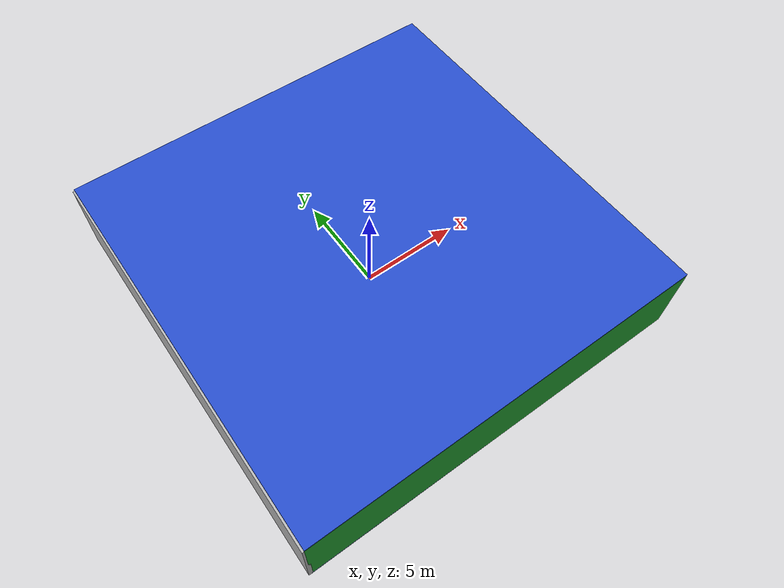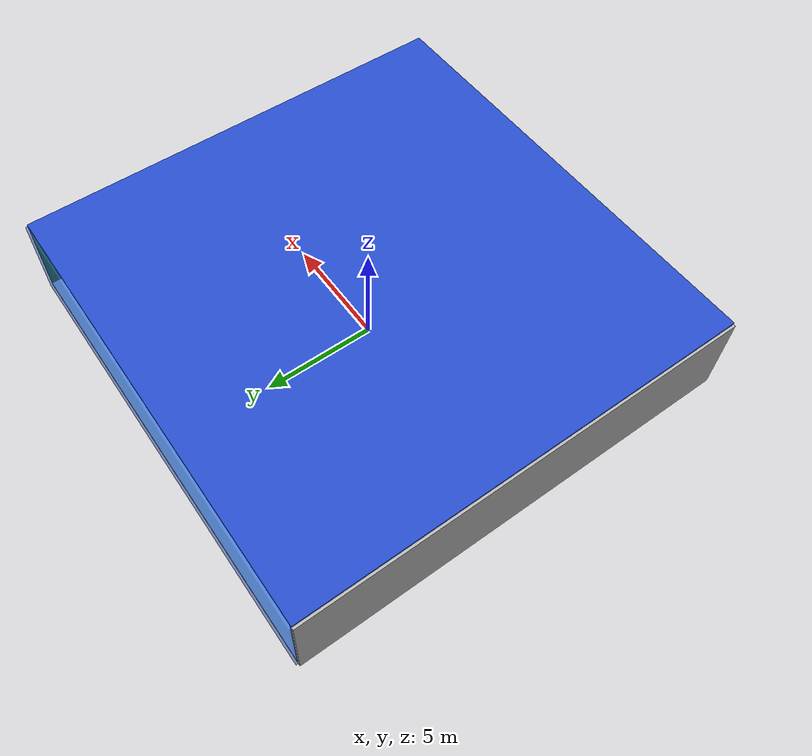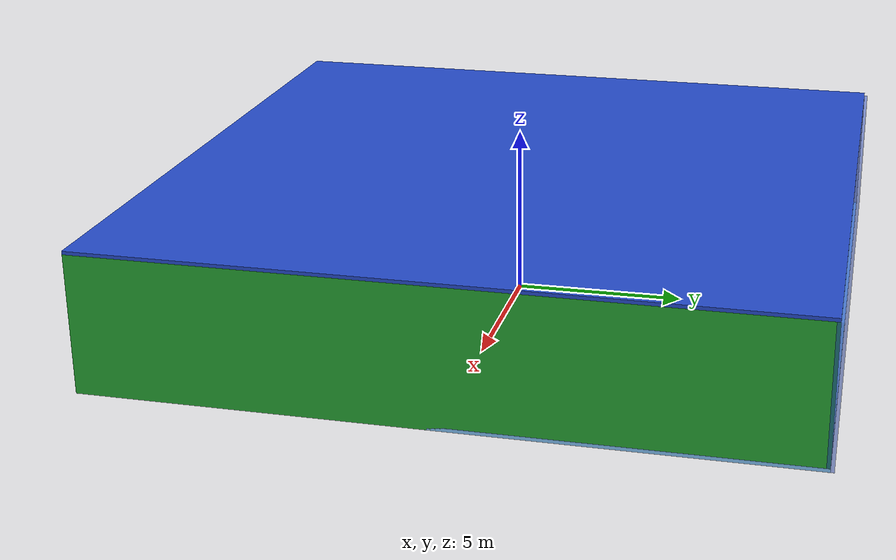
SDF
<sdf version="1.4">
 <world name="default">
  <physics type="ode">
   <max_step_size>0.001</max_step_size>
   <real_time_factor>1</real_time_factor>
   <real_time_update_rate>1000</real_time_update_rate>
   <gravity>0 0 -9.8</gravity>
  </physics>
  <scene><ambient>0.4 0.4 0.4 1</ambient><background>0.7 0.7 0.7 1</background><shadows>1</shadows></scene>
  <model name="Surrounding">
   <static>1</static>
   <link name="Ceiling">
    <collision name="Ceiling_Collision"><geometry><box><size>20 20 0.1</size></box></geometry></collision>
    <visual name="Ceiling_Visual">
     <geometry><box><size>20 20 0.1</size></box></geometry>
     <material>
      <script><uri>file://media/materials/scripts/gazebo.material</uri><name>Gazebo/BlueLaser</name></script>
     </material>
    </visual>
    <pose>0 0 4.05 0 0 0</pose>
   </link>
   <link name="Wall_South">
    <collision name="Wall_South_Collision">
     <geometry><box><size>20 0 4</size></box></geometry>
     <pose>0 0 2 0 -0 0</pose>
    </collision>
    <visual name="Wall_South_Visual">
     <pose>0 0 2 0 -0 0</pose>
     <geometry><box><size>20 0 4</size></box></geometry>
     <material>
      <script><uri>file://media/materials/scripts/gazebo.material</uri><name>Gazebo/Green</name></script>
     </material>
    </visual>
    <velocity_decay><linear>0</linear><angular>0</angular></velocity_decay>
    <pose>0 -10 0 0 -0 0</pose>
   </link>
   <link name="Wall_East">
    <collision name="Wall_21_Collision">
     <geometry><box><size>20 0 4</size></box></geometry>
     <pose>0 0 2 0 -0 0</pose>
    </collision>
    <visual name="Wall_21_Visual">
     <pose>0 0 2 0 -0 0</pose>
     <geometry><box><size>20 0 4</size></box></geometry>
     <material>
      <script><uri>file://media/materials/scripts/gazebo.material</uri><name>Gazebo/Green</name></script>
     </material>
    </visual>
    <velocity_decay><linear>0</linear><angular>0</angular></velocity_decay>
    <pose>10 0 0 0 -0 1.5708</pose>
   </link>
   <link name="Wall_North">
    <collision name="Wall_22_Collision">
     <geometry><box><size>20 0.2 4</size></box></geometry>
     <pose>0 0 2 0 -0 0</pose>
    </collision>
    <visual name="Wall_22_Visual">
     <pose>0 0 2 0 -0 0</pose>
     <geometry><box><size>20 0.2 4</size></box></geometry>
     <material>
      <script><uri>file://media/materials/scripts/gazebo.material</uri><name>Gazebo/BlueTransparent</name></script>
     </material>
    </visual>
    <velocity_decay><linear>0</linear><angular>0</angular></velocity_decay>
    <pose>0 10 0 0 -0 0</pose>
   </link>
   <link name="Wall_West">
    <collision name="Wall_23_Collision">
     <geometry><box><size>20 0.2 4</size></box></geometry>
     <pose>0 0 2 0 -0 0</pose>
    </collision>
    <visual name="Wall_23_Visual">
     <pose>0 0 2 0 -0 0</pose>
     <geometry><box><size>20 0.2 4</size></box></geometry>
     <material>
      <script><uri>file://media/materials/scripts/gazebo.material</uri><name>Gazebo/LightOn</name></script>
     </material>
    </visual>
    <velocity_decay><linear>0</linear><angular>0</angular></velocity_decay>
    <pose>-10 0 0 0 0 -1.5708</pose>
   </link>
   <link name="Ground_link">
    <collision name="collision">
     <pose>0 0 .05 0 -0 0</pose>
     <geometry><box><size>20 20 0.1</size></box></geometry>
    </collision>
    <visual name="visual">
     <pose>0 0 .05 0 -0 0</pose>
     <geometry><box><size>20 20 0.1</size></box></geometry>
     <material>
      <script><uri>file://media/materials/scripts/gazebo.material</uri><name>Gazebo/SkyBlue</name></script>
     </material>
    </visual>
   </link>
   <static>1</static>
  </model>
  <spherical_coordinates>
   <surface_model>EARTH_WGS84</surface_model>
   <latitude_deg>0</latitude_deg>
   <longitude_deg>0</longitude_deg>
   <elevation>0</elevation>
   <heading_deg>0</heading_deg>
  </spherical_coordinates>
  <light name="lightball_0" type="diffuse">
   <diffuse>0.8 0.8 0.8 1</diffuse>
   <specular>0.2 0.2 0.2 1</specular>
   <attenuation>
    <range>100</range>
    <constant>0.7</constant>
    <linear>0.01</linear>
    <quadratic>0.001</quadratic>
   </attenuation>
   <direction>-0.5 0.1 -0.9</direction>
   <pose>-4.45942576959 -0.135600041287 3.736096912 0 0 0</pose>
  </light>
  <light name="lightball_1" type="diffuse">
   <diffuse>0.8 0.8 0.8 1</diffuse>
   <specular>0.2 0.2 0.2 1</specular>
   <attenuation>
    <range>100</range>
    <constant>0.7</constant>
    <linear>0.01</linear>
    <quadratic>0.001</quadratic>
   </attenuation>
   <direction>-0.5 0.1 -0.9</direction>
   <pose>1.42248211647 9.82209235113 1.69137329077 0 0 0</pose>
  </light>
  <light name="lightball_2" type="diffuse">
   <diffuse>0.8 0.8 0.8 1</diffuse>
   <specular>0.2 0.2 0.2 1</specular>
   <attenuation>
    <range>100</range>
    <constant>0.7</constant>
    <linear>0.01</linear>
    <quadratic>0.001</quadratic>
   </attenuation>
   <direction>-0.5 0.1 -0.9</direction>
   <pose>-9.3638976671 -4.88756938348 2.13827309692 0 0 0</pose>
  </light>
  <light name="lightball_3" type="diffuse">
   <diffuse>0.8 0.8 0.8 1</diffuse>
   <specular>0.2 0.2 0.2 1</specular>
   <attenuation>
    <range>100</range>
    <constant>0.7</constant>
    <linear>0.01</linear>
    <quadratic>0.001</quadratic>
   </attenuation>
   <direction>-0.5 0.1 -0.9</direction>
   <pose>8.59172841446 -6.31208897275 0.842189761723 0 0 0</pose>
  </light>
  <light name="lightball_4" type="diffuse">
   <diffuse>0.8 0.8 0.8 1</diffuse>
   <specular>0.2 0.2 0.2 1</specular>
   <attenuation>
    <range>100</range>
    <constant>0.7</constant>
    <linear>0.01</linear>
    <quadratic>0.001</quadratic>
   </attenuation>
   <direction>-0.5 0.1 -0.9</direction>
   <pose>-8.17534623338 -3.24030007264 1.20375326862 0 0 0</pose>
  </light>
  <light name="lightball_5" type="diffuse">
   <diffuse>0.8 0.8 0.8 1</diffuse>
   <specular>0.2 0.2 0.2 1</specular>
   <attenuation>
    <range>100</range>
    <constant>0.7</constant>
    <linear>0.01</linear>
    <quadratic>0.001</quadratic>
   </attenuation>
   <direction>-0.5 0.1 -0.9</direction>
   <pose>6.72316229644 4.85176603534 0.755662027202 0 0 0</pose>
  </light>
  <light name="lightball_6" type="diffuse">
   <diffuse>0.8 0.8 0.8 1</diffuse>
   <specular>0.2 0.2 0.2 1</specular>
   <attenuation>
    <range>100</range>
    <constant>0.7</constant>
    <linear>0.01</linear>
    <quadratic>0.001</quadratic>
   </attenuation>
   <direction>-0.5 0.1 -0.9</direction>
   <pose>-5.88714424721 2.37302039763 3.64062081254 0 0 0</pose>
  </light>
  <include><uri>model://cabinet</uri><pose>-8.26332291528 -4.89954974522 0 0 0 2.53801793425</pose></include>
  <include><uri>model://table</uri><pose>-8.51215853945 2.35208580222 0 0 0 2.28609686469</pose></include>
  <include>
   <uri>model://construction_cone</uri>
   <pose>-8.19542200129 4.56016471317 0 0 0 2.46478169929</pose>
  </include>
  <include>
   <uri>model://robocup_3Dsim_goal</uri>
   <pose>-1.3046103184 -2.20360884941 0 0 0 1.80511792989</pose>
  </include>
  <include>
   <uri>model://robocup_3Dsim_goal</uri>
   <pose>1.47789627894 -5.23730952252 0 0 0 0.907239138596</pose>
  </include>
  <include><uri>model://cabinet</uri><pose>2.54755994389 -0.545345963353 0 0 0 2.43269897018</pose></include>
  <include><uri>model://cabinet</uri><pose>8.22516105146 4.99696188871 0 0 0 1.97035259235</pose></include>
 </world>
</sdf>

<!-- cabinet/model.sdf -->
<sdf version="1.5">
  <model name="cabinet">
    <static>true</static>
    <link name="cabinet_bottom_plate">
      <inertial>
        <pose>0 0 -1 0 0 0</pose>
        <inertia>
          <ixx>2.050000</ixx>
          <ixy>0</ixy>
          <ixz>0</ixz>
          <iyy>2.050000</iyy>
          <iyz>0</iyz>
          <izz>2.050000</izz>
        </inertia>
        <mass>25.000000</mass>
      </inertial>
      <collision name="cabinet_bottom_plate_geom">
        <pose>0 0 0.010000 0 0 0</pose>
        <geometry>
          <box>
            <size>0.450000 0.450000 0.020000</size>
          </box>
        </geometry>
      </collision>
      <visual name="cabinet_bottom_plate_geom_visual">
        <pose>0 0 0.010000 0 0 0</pose>
        <geometry>
          <box>
            <size>0.450000 0.450000 0.020000</size>
          </box>
        </geometry>
        <material>
          <script>
            <uri>model://media/materials/scripts/gazebo.material</uri>
            <name>Gazebo/Wood</name>
          </script>
        </material>
      </visual>
      <collision name="cabinet_bottom_plate_geom_cabinet_back_plate">
        <pose>0.235000 0 0.510000 0 0 0</pose>
        <geometry>
          <box>
            <size>0.020000 0.450000 1.020000</size>
          </box>
        </geometry>
      </collision>
      <visual name="cabinet_bottom_plate_geom_cabinet_back_plate_visual">
        <pose>0.235000 0 0.510000 0 0 0</pose>
        <geometry>
          <box>
            <size>0.020000 0.450000 1.020000</size>
          </box>
        </geometry>
        <material>
          <script>
            <uri>model://media/materials/scripts/gazebo.material</uri>
            <name>Gazebo/Wood</name>
          </script>
        </material>
      </visual>
      <collision name="cabinet_bottom_plate_geom_cabinet_left_plate">
        <pose>0 0.235000 0.510000 0 0 0</pose>
        <geometry>
          <box>
            <size>0.450000 0.020000 1.020000</size>
          </box>
        </geometry>
      </collision>
      <visual name="cabinet_bottom_plate_geom_cabinet_left_plate_visual">
        <pose>0 0.235000 0.510000 0 0 0</pose>
        <geometry>
          <box>
            <size>0.450000 0.020000 1.020000</size>
          </box>
        </geometry>
        <material>
          <script>
            <uri>model://media/materials/scripts/gazebo.material</uri>
            <name>Gazebo/Wood</name>
          </script>
        </material>
      </visual>
      <collision name="cabinet_bottom_plate_geom_cabinet_middle_plate">
        <pose>0 0 0.510000 0 0 0</pose>
        <geometry>
          <box>
            <size>0.450000 0.450000 0.020000</size>
          </box>
        </geometry>
      </collision>
      <visual name="cabinet_bottom_plate_geom_cabinet_middle_plate_visual">
        <pose>0 0 0.510000 0 0 0</pose>
        <geometry>
          <box>
            <size>0.450000 0.450000 0.020000</size>
          </box>
        </geometry>
        <material>
          <script>
            <uri>model://media/materials/scripts/gazebo.material</uri>
            <name>Gazebo/Wood</name>
          </script>
        </material>
      </visual>
      <collision name="cabinet_bottom_plate_geom_cabinet_right_plate">
        <pose>0 -0.235000 0.510000 0 0 0</pose>
        <geometry>
          <box>
            <size>0.450000 0.020000 1.020000</size>
          </box>
        </geometry>
      </collision>
      <visual name="cabinet_bottom_plate_geom_cabinet_right_plate_visual">
        <pose>0 -0.235000 0.510000 0 0 0</pose>
        <geometry>
          <box>
            <size>0.450000 0.020000 1.020000</size>
          </box>
        </geometry>
        <material>
          <script>
            <uri>model://media/materials/scripts/gazebo.material</uri>
            <name>Gazebo/Wood</name>
          </script>
        </material>
      </visual>
      <collision name="cabinet_bottom_plate_geom_cabinet_top_plate">
        <pose>0 0 1.010000 0 0 0</pose>
        <geometry>
          <box>
            <size>0.450000 0.450000 0.020000</size>
          </box>
        </geometry>
      </collision>
      <visual name="cabinet_bottom_plate_geom_cabinet_top_plate_visual">
        <pose>0 0 1.010000 0 0 0</pose>
        <geometry>
          <box>
            <size>0.450000 0.450000 0.020000</size>
          </box>
        </geometry>
        <material>
          <script>
            <uri>model://media/materials/scripts/gazebo.material</uri>
            <name>Gazebo/Wood</name>
          </script>
        </material>
      </visual>
    </link>
  </model>
</sdf>

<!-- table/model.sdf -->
<sdf version="1.5">
  <model name="table">
    <static>true</static>
    <link name="link">
      <collision name="surface">
        <pose>0 0 1.0 0 0 0</pose>
        <geometry>
          <box>
            <size>1.5 0.8 0.03</size>
          </box>
        </geometry>
        <surface>
          <friction>
            <ode>
              <mu>0.6</mu>
              <mu2>0.6</mu2>
            </ode>
          </friction>
        </surface>
      </collision>
      <visual name="visual1">
        <pose>0 0 1.0 0 0 0</pose>
        <geometry>
          <box>
            <size>1.5 0.8 0.03</size>
          </box>
        </geometry>
        <material>
          <script>
            <uri>model://media/materials/scripts/gazebo.material</uri>
            <name>Gazebo/Wood</name>
          </script>
        </material>
      </visual>
      <collision name="front_left_leg">
        <pose>0.68 0.38 0.5 0 0 0</pose>
        <geometry>
          <cylinder>
            <radius>0.02</radius>
            <length>1.0</length>
          </cylinder>
        </geometry>
      </collision>
      <visual name="front_left_leg">
        <pose>0.68 0.38 0.5 0 0 0</pose>
        <geometry>
          <cylinder>
            <radius>0.02</radius>
            <length>1.0</length>
          </cylinder>
        </geometry>
        <material>
          <script>
            <uri>model://media/materials/scripts/gazebo.material</uri>
            <name>Gazebo/Grey</name>
          </script>
        </material>
      </visual>
      <collision name="front_right_leg">
        <pose>0.68 -0.38 0.5 0 0 0</pose>
        <geometry>
          <cylinder>
            <radius>0.02</radius>
            <length>1.0</length>
          </cylinder>
        </geometry>
      </collision>
      <visual name="front_right_leg">
        <pose>0.68 -0.38 0.5 0 0 0</pose>
        <geometry>
          <cylinder>
            <radius>0.02</radius>
            <length>1.0</length>
          </cylinder>
        </geometry>
        <material>
          <script>
            <uri>model://media/materials/scripts/gazebo.material</uri>
            <name>Gazebo/Grey</name>
          </script>
        </material>
      </visual>
      <collision name="back_right_leg">
        <pose>-0.68 -0.38 0.5 0 0 0</pose>
        <geometry>
          <cylinder>
            <radius>0.02</radius>
            <length>1.0</length>
          </cylinder>
        </geometry>
      </collision>
      <visual name="back_right_leg">
        <pose>-0.68 -0.38 0.5 0 0 0</pose>
        <geometry>
          <cylinder>
            <radius>0.02</radius>
            <length>1.0</length>
          </cylinder>
        </geometry>
        <material>
          <script>
            <uri>model://media/materials/scripts/gazebo.material</uri>
            <name>Gazebo/Grey</name>
          </script>
        </material>
      </visual>
      <collision name="back_left_leg">
        <pose>-0.68 0.38 0.5 0 0 0</pose>
        <geometry>
          <cylinder>
            <radius>0.02</radius>
            <length>1.0</length>
          </cylinder>
        </geometry>
      </collision>
      <visual name="back_left_leg">
        <pose>-0.68 0.38 0.5 0 0 0</pose>
        <geometry>
          <cylinder>
            <radius>0.02</radius>
            <length>1.0</length>
          </cylinder>
        </geometry>
        <material>
          <script>
            <uri>model://media/materials/scripts/gazebo.material</uri>
            <name>Gazebo/Grey</name>
          </script>
        </material>
      </visual>
    </link>
  </model>
</sdf>

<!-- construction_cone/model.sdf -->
<sdf version="1.5">
  <model name="Construction Cone">
    <link name="link">
      <collision name="collision">
        <geometry>
          <mesh>
            <scale>10 10 10</scale>
            <uri>file://isr-testbed/construction_cone/meshes/construction_cone.dae</uri>
          </mesh>
        </geometry>
      </collision>
      <visual name="visual">
        <geometry>
          <mesh>
            <scale>10 10 10</scale>
            <uri>file://isr-testbed/construction_cone/meshes/construction_cone.dae</uri>
          </mesh>
        </geometry>
      </visual>
    </link>
  </model>
</sdf>

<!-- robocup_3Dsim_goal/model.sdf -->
<sdf version="1.5">
  <model name="robocup_3d_goal">
    <static>true</static>
    <link name="left_post">
      <pose>0 1.05 0.45 0 0 0</pose>
      <collision name="collision">
        <geometry>
          <cylinder>
            <radius>0.05</radius>
            <length>0.9</length>
          </cylinder>
        </geometry>
      </collision>
      <visual name="visual">
        <geometry>
          <cylinder>
            <radius>0.05</radius>
            <length>0.9</length>
          </cylinder>
        </geometry>
        <material>
          <script>
            <uri>file://media/materials/scripts/gazebo.material</uri>
            <name>Gazebo/ZincYellow</name>
          </script>
        </material>
      </visual>
    </link>
    <link name="left_support_horiz_lower">
      <pose>0.30 1.05 0.01 0 0 0</pose>
      <collision name="collision">
        <geometry>
          <box>
            <size>0.50 0.02 0.02</size>
          </box>
        </geometry>
      </collision>
      <visual name="visual">
        <geometry>
          <box>
            <size>0.50 0.02 0.02</size>
          </box>
        </geometry>
        <material>
          <script>
            <uri>file://media/materials/scripts/gazebo.material</uri>
            <name>Gazebo/White</name>
          </script>
        </material>
      </visual>
    </link>
    <link name="left_support_horiz_upper">
      <pose>0.30 1.05 0.79 0 0 0</pose>
      <collision name="collision">
        <geometry>
          <box>
            <size>0.50 0.02 0.02</size>
          </box>
        </geometry>
      </collision>
      <visual name="visual">
        <geometry>
          <box>
            <size>0.50 0.02 0.02</size>
          </box>
        </geometry>
        <material>
          <script>
            <uri>file://media/materials/scripts/gazebo.material</uri>
            <name>Gazebo/White</name>
          </script>
        </material>
      </visual>
    </link>
    <link name="left_support_vertical">
      <pose>0.56 1.05 0.4 0 1.5708 0</pose>
      <collision name="collision">
        <geometry>
          <box>
            <size>0.80 0.02 0.02</size>
          </box>
        </geometry>
      </collision>
      <visual name="visual">
        <geometry>
          <box>
            <size>0.80 0.02 0.02</size>
          </box>
        </geometry>
        <material>
          <script>
            <uri>file://media/materials/scripts/gazebo.material</uri>
            <name>Gazebo/White</name>
          </script>
        </material>
      </visual>
    </link>
    <link name="right_support_horiz_lower">
      <pose>0.30 -1.05 0.01 0 0 0</pose>
      <collision name="collision">
        <geometry>
          <box>
            <size>0.50 0.02 0.02</size>
          </box>
        </geometry>
      </collision>
      <visual name="visual">
        <geometry>
          <box>
            <size>0.50 0.02 0.02</size>
          </box>
        </geometry>
        <material>
          <script>
            <uri>file://media/materials/scripts/gazebo.material</uri>
            <name>Gazebo/White</name>
          </script>
        </material>
      </visual>
    </link>
    <link name="right_support_horiz_upper">
      <pose>0.30 -1.05 0.79 0 0 0</pose>
      <collision name="collision">
        <geometry>
          <box>
            <size>0.50 0.02 0.02</size>
          </box>
        </geometry>
      </collision>
      <visual name="visual">
        <geometry>
          <box>
            <size>0.50 0.02 0.02</size>
          </box>
        </geometry>
        <material>
          <script>
            <uri>file://media/materials/scripts/gazebo.material</uri>
            <name>Gazebo/White</name>
          </script>
        </material>
      </visual>
    </link>
    <link name="right_support_vertical">
      <pose>0.56 -1.05 0.4 0 1.5708 0</pose>
      <collision name="collision">
        <geometry>
          <box>
            <size>0.80 0.02 0.02</size>
          </box>
        </geometry>
      </collision>
      <visual name="visual">
        <geometry>
          <box>
            <size>0.80 0.02 0.02</size>
          </box>
        </geometry>
        <material>
          <script>
            <uri>file://media/materials/scripts/gazebo.material</uri>
            <name>Gazebo/White</name>
          </script>
        </material>
      </visual>
    </link>
    <link name="center_support_horiz_lower">
      <pose>0.56 0 0.01 0 1.5708 0</pose>
      <collision name="collision">
        <geometry>
          <box>
            <size>0.02 2.08 0.02</size>
          </box>
        </geometry>
      </collision>
      <visual name="visual">
        <geometry>
          <box>
            <size>0.02 2.08 0.02</size>
          </box>
        </geometry>
        <material>
          <script>
            <uri>file://media/materials/scripts/gazebo.material</uri>
            <name>Gazebo/White</name>
          </script>
        </material>
      </visual>
    </link>
    <link name="center_support_horiz_upper">
      <pose>0.56 0 0.79 0 1.5708 0</pose>
      <collision name="collision">
        <geometry>
          <box>
            <size>0.02 2.08 0.02</size>
          </box>
        </geometry>
      </collision>
      <visual name="visual">
        <geometry>
          <box>
            <size>0.02 2.08 0.02</size>
          </box>
        </geometry>
        <material>
          <script>
            <uri>file://media/materials/scripts/gazebo.material</uri>
            <name>Gazebo/White</name>
          </script>
        </material>
      </visual>
    </link>
    <link name="right_post">
      <pose>0 -1.05 0.45 0 0 0</pose>
      <collision name="collision">
        <geometry>
          <cylinder>
            <radius>0.05</radius>
            <length>0.9</length>
          </cylinder>
        </geometry>
      </collision>
      <visual name="visual">
        <geometry>
          <cylinder>
            <radius>0.05</radius>
            <length>0.9</length>
          </cylinder>
        </geometry>
        <material>
          <script>
            <uri>file://media/materials/scripts/gazebo.material</uri>
            <name>Gazebo/ZincYellow</name>
          </script>
        </material>
      </visual>
    </link>
    <link name="crossbar">
      <pose>0 0 0.85 1.57 1.57 0</pose>
      <collision name="collision">
        <geometry>
          <cylinder>
            <radius>0.05</radius>
            <length>2.0</length>
          </cylinder>
        </geometry>
      </collision>
      <visual name="visual">
        <geometry>
          <cylinder>
            <radius>0.05</radius>
            <length>2.0</length>
          </cylinder>
        </geometry>
        <material>
          <script>
            <uri>file://media/materials/scripts/gazebo.material</uri>
            <name>Gazebo/ZincYellow</name>
          </script>
        </material>
      </visual>
    </link>
    <link name="center_net">
      <pose>0.56 0 0.40 0 0 0</pose>
      <collision name="collision">
        <geometry>
          <box>
            <size>0.01 2.1 0.80</size>
          </box>
        </geometry>
      </collision>
      <visual name="visual">
        <geometry>
          <box>
            <size>0.01 2.1 0.80</size>
          </box>
        </geometry>
        <material>
          <script>
            <uri>model://../model_source/models/robocup09_spl_field/materials/scripts/</uri>
            <uri>model://../model_source/models/robocup09_spl_field/materials/textures/</uri>
            <name>RoboCup/Net</name>
          </script>
        </material>
      </visual>
    </link>
    <link name="left_net">
      <pose>0.30 1.05 0.40 0 0 0</pose>
      <collision name="collision">
        <geometry>
          <box>
            <size>0.50 0.01 0.76</size>
          </box>
        </geometry>
      </collision>
      <visual name="visual">
        <geometry>
          <box>
            <size>0.50 0.01 0.76</size>
          </box>
        </geometry>
        <material>
          <script>
            <uri>model://../model_source/models/robocup09_spl_field/materials/scripts/</uri>
            <uri>model://../model_source/models/robocup09_spl_field/materials/textures/</uri>
            <name>RoboCup/Net</name>
          </script>
        </material>
      </visual>
    </link>
    <link name="right_net">
      <pose>0.30 -1.05 0.40 0 0 0</pose>
      <collision name="collision">
        <geometry>
          <box>
            <size>0.50 0.01 0.76</size>
          </box>
        </geometry>
      </collision>
      <visual name="visual">
        <geometry>
          <box>
            <size>0.50 0.01 0.76</size>
          </box>
        </geometry>
        <material>
          <script>
            <uri>model://../model_source/models/robocup09_spl_field/materials/scripts/</uri>
            <uri>model://../model_source/models/robocup09_spl_field/materials/textures/</uri>
            <name>RoboCup/Net</name>
          </script>
        </material>
      </visual>
    </link>
  </model>
</sdf>
